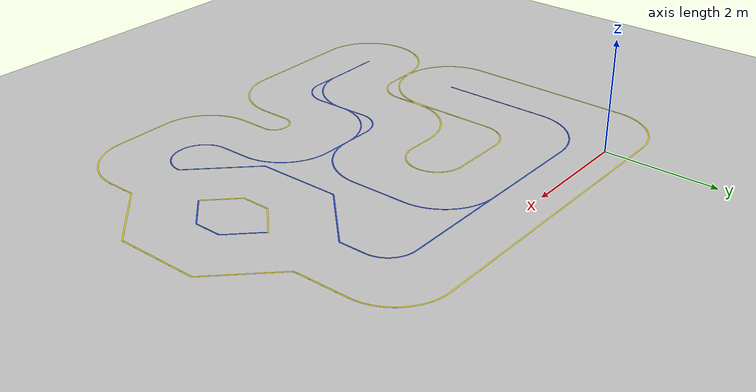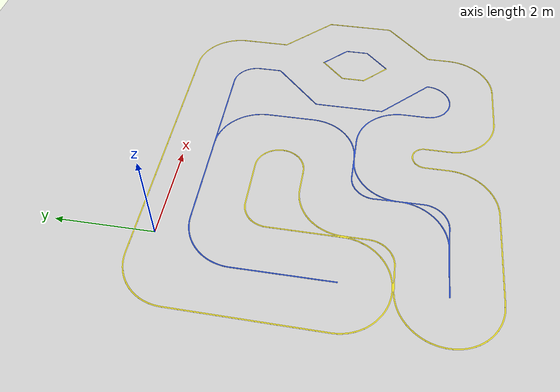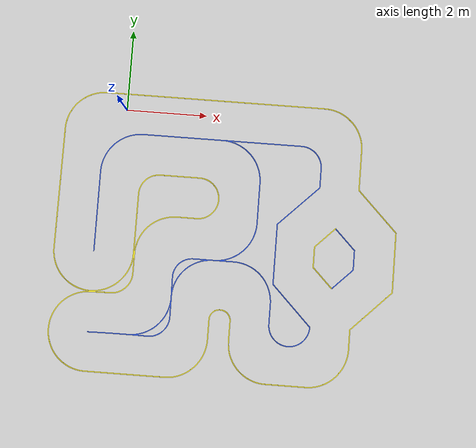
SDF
<?xml version="1.0" ?>
<sdf version="1.9">
  <world name="track_world">

    <!-- ========== Physics ========== -->
    <physics name="default_physics" type="ode">
      <max_step_size>0.001</max_step_size>
      <real_time_factor>1.0</real_time_factor>
      <real_time_update_rate>1000</real_time_update_rate>
    </physics>

    <!-- ========== Plugins ========== -->
    <plugin filename="libgz-sim8-physics-system.so"
            name="gz::sim::systems::Physics"/>
    <plugin filename="libgz-sim8-user-commands-system.so"
            name="gz::sim::systems::UserCommands"/>
    <plugin filename="libgz-sim8-scene-broadcaster-system.so"
            name="gz::sim::systems::SceneBroadcaster"/>

    <!-- ========== Scene / Lighting ========== -->
    <scene>
      <ambient>0.4 0.4 0.4 1.0</ambient>
      <background>0.7 0.7 0.7 1.0</background>
      <shadows>true</shadows>
    </scene>

    <light name="sun" type="directional">
      <pose>0 0 10 0 0 0</pose>
      <diffuse>0.8 0.8 0.8 1</diffuse>
      <specular>0.2 0.2 0.2 1</specular>
      <direction>-0.5 0.1 -0.9</direction>
      <cast_shadows>true</cast_shadows>
    </light>

    <!-- ========== Track Surface — Left Half ========== -->
    <model name="track_left">
      <static>true</static>
      <pose>0 -6 0.001 1.5707963267948966 0 1.5707963267948966</pose>
      <link name="track_left_link">

        <collision name="track_left_collision">
          <geometry>
            <mesh>
              <uri>BlueTrack.stl</uri>
              <scale>0.001 0.001 0.001</scale>
            </mesh>
          </geometry>
          <surface>
            <friction>
              <ode>
                <mu>0.8</mu>
                <mu2>0.8</mu2>
              </ode>
            </friction>
            <contact>
              <ode>
                <kp>1000</kp>
                <kd>1.0</kd>
              </ode>
            </contact>
          </surface>
        </collision>

        <visual name="track_left_visual">
          <geometry>
            <mesh>
              <uri>BlueTrack.stl</uri>
              <scale>0.001 0.001 0.001</scale>
            </mesh>
          </geometry>
          <material>
            <script>
              <!-- Example: Gazebo/Blue, Gazebo/Red, Gazebo/FlatBlack -->
              <name>Gazebo/Blue</name>
              <uri>file://media/materials/scripts/gazebo.material</uri>
            </script>
          </material>
        </visual>

      </link>
    </model>

    <!-- ========== Track Surface — Right Half ========== -->
    <model name="track_right">
      <static>true</static>
      <pose>0 -6 0.001 1.5707963267948966 0 1.5707963267948966</pose>
      <link name="track_right_link">

        <collision name="track_right_collision">
          <geometry>
            <mesh>
              <uri>YellowTrack.stl</uri>
              <scale>0.001 0.001 0.001</scale>
            </mesh>
          </geometry>
          <surface>
            <friction>
              <ode>
                <mu>0.8</mu>
                <mu2>0.8</mu2>
              </ode>
            </friction>
            <contact>
              <ode>
                <kp>1000</kp>
                <kd>1.0</kd>
              </ode>
            </contact>
          </surface>
        </collision>

        <visual name="track_right_visual">
          <geometry>
            <mesh>
              <uri>YellowTrack.stl</uri>
              <scale>0.001 0.001 0.001</scale>
            </mesh>
          </geometry>
          <material>
          <script>
            <!-- Example: Gazebo/Blue, Gazebo/Red, Gazebo/FlatBlack -->
            <name>Gazebo/Yellow</name>
            <uri>file://media/materials/scripts/gazebo.material</uri>
          </script>
        </material>
        </visual>

      </link>
    </model>

    <!-- ========== Ground Plane ========== -->
    <model name="ground_plane">
        <static>true</static>
        <pose>0 0 0 0 0 0</pose>
        <link name="ground_plane_link">
            <collision name="collision">
                <geometry>
                    <plane>
                        <normal>0 0 1</normal>
                        <size>100 100</size>
                    </plane>
                </geometry>
                <surface>
                    <friction>
                        <ode>
                            <mu>0.8</mu>
                            <mu2>0.8</mu2>
                        </ode>
                    </friction>
                </surface>
            </collision>

            <visual name="visual">
                <geometry>
                    <plane>
                        <normal>0 0 1</normal>
                        <size>100 100</size>
                    </plane>
                </geometry>
                <material>
                    <script>
                        <uri>file://media/materials/scripts/gazebo.material</uri>
                        <name>Gazebo/Grey</name>
                    </script>
                </material>
            </visual>
        </link>
    </model>

    <!-- ========== Spawn your rover separately ========== -->

  </world>
</sdf>
